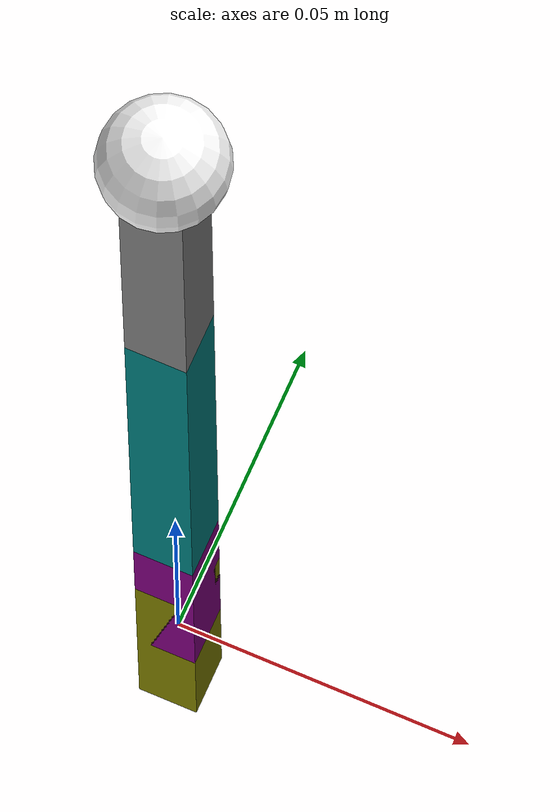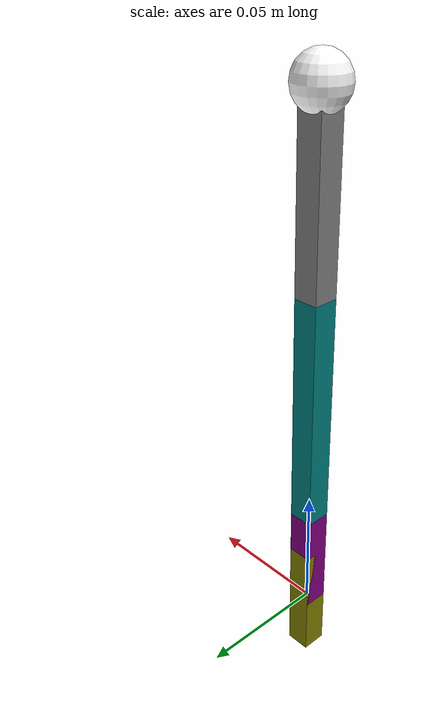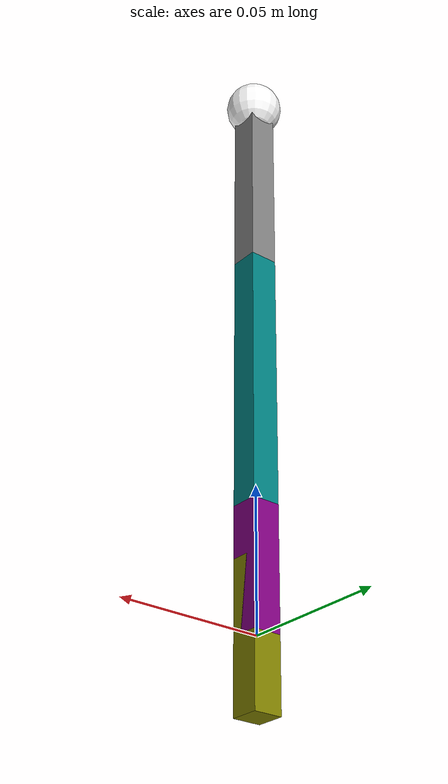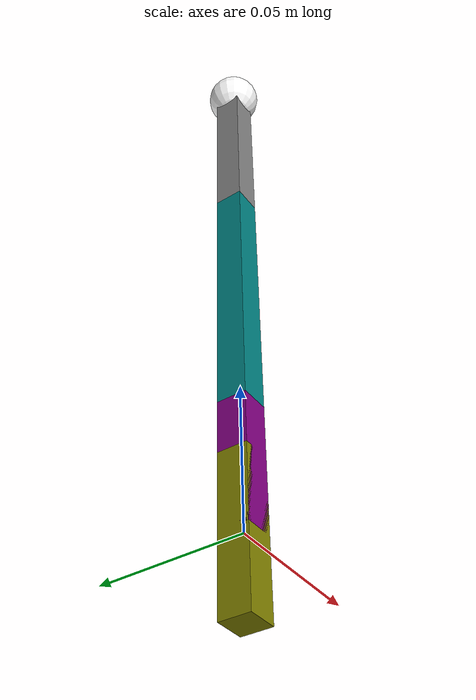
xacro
<?xml version="1.0"?>
<robot xmlns:xacro="http://www.ros.org/wiki/xacro" name="me212bot">

<xacro:property name="link1_length" value="0.043" />
<xacro:property name="link2_length" value="0.093" />
<xacro:property name="link3_length" value="0.07" />
<xacro:property name="M_PI" value="3.1415926" />

<link name="arm_base">
    <visual>
        <geometry>
            <box size="0.01 0.01 0.05" />
        </geometry>
        <origin rpy="0 0 0" xyz="0 0 0"/>
        <material name="color1">
            <color rgba="0.5 0.5 0.0 1"/>
        </material>
    </visual>
</link>

<link name="link1">
    <visual>
        <geometry>
            <box size="0.01 0.01 ${link1_length}" />
        </geometry>
        <origin rpy="0 0 0" xyz="0 0 ${link1_length/2}"/>
        <material name="color2">
            <color rgba="0.5 0.0 0.5 1"/>
        </material>
    </visual>
</link>

<link name="link2">
    <visual>
        <geometry>
            <box size="0.01 0.01 ${link2_length}" />
        </geometry>
        <origin rpy="0 0 0" xyz="0 0 ${link2_length/2}"/>
        <material name="color3">
            <color rgba="0.0 0.5 0.5 1"/>
        </material>
    </visual>
</link>

<link name="link3">
    <visual>
        <geometry>
            <box size="0.01 0.01 ${link3_length}" />
        </geometry>
        <origin rpy="0 0 0" xyz="0 0 ${link3_length/2}"/>
        <material name="color4">
            <color rgba="0.5 0.5 0.5 1"/>
        </material>
    </visual>
</link>

<link name="tcp">
    <visual>
        <geometry>
            <sphere radius="0.01" />
        </geometry>
        <origin rpy="0 0 0" xyz="0 0 0"/>
        <material name="color5">
            <color rgba="1 1 1 1"/>
        </material>
    </visual>
</link>

<!--joint name="joint1" type="revolute"-->
<joint name="joint0" type="fixed">
    <parent link="arm_base"/>
    <child link="link1"/>
    <origin xyz="0 0 0" />
    <limit effort="300" lower="${-M_PI}" upper="${M_PI}" velocity="7.33"/>
    <axis xyz="0 -1 0"/>
</joint>

<joint name="joint1" type="revolute">
    <parent link="link1"/>
    <child link="link2"/>
    <origin xyz="0 0 ${link1_length}" />
    <limit effort="300" lower="${-M_PI}" upper="${M_PI}" velocity="7.33"/>
    <axis xyz="0 -1 0"/>
</joint>

<!--joint name="joint3" type="fixed"-->
<joint name="joint2" type="revolute">
    <parent link="link2"/>
    <child link="link3"/>
    <origin xyz="0 0 ${link2_length}" />
    <limit effort="300" lower="${-M_PI}" upper="${M_PI}" velocity="7.33"/>
    <axis xyz="0 -1 0"/>
</joint>

<joint name="joint3" type="fixed">
    <parent link="link3"/>
    <child link="tcp"/>
    <origin xyz="0 0 ${link3_length}" />
    <limit effort="300" lower="${-M_PI}" upper="${M_PI}" velocity="7.33"/>
    <axis xyz="0 -1 0"/>
</joint>

</robot>
